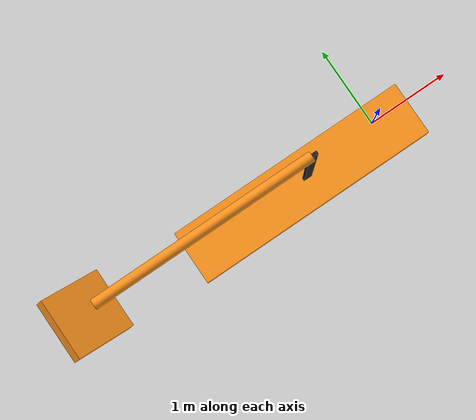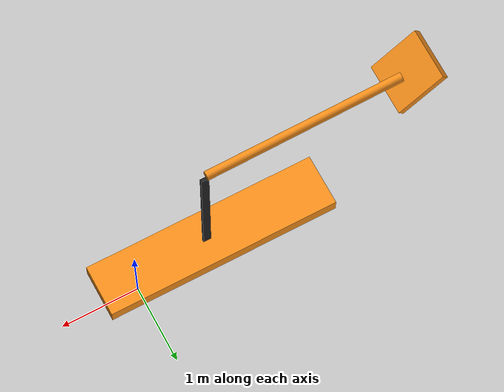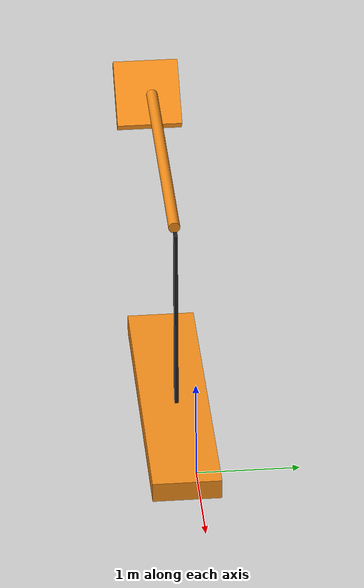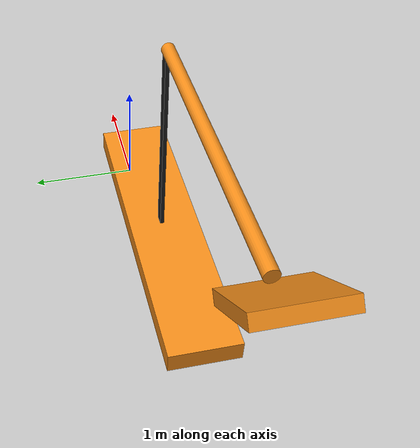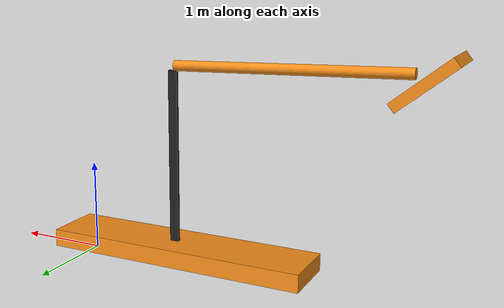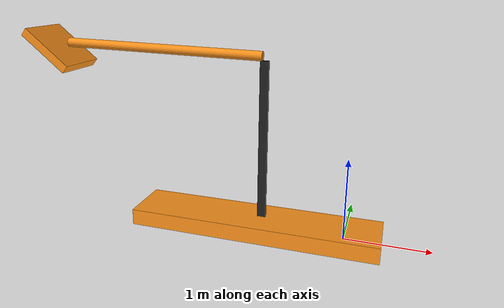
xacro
<?xml version="1.0" ?>

<robot name="myboat"  xmlns:xacro="http://www.ros.org/wiki/xacro">

  <!-- Constants for robot dimensions -->
  <xacro:property name="PI" value="3.1415926535897931"/>

  <!-- Import all Gazebo-customization elements, including Gazebo colors -->
  <xacro:include filename="$(find boot0_description)/urdf/boot0.gazebo" />
  <!-- Import Rviz colors -->
  <xacro:include filename="$(find boot0_description)/urdf/materials.xacro" />

  <joint name="body_arm" type="revolute">
    <parent link="myboat__body"/>
    <child link="myboat__arm"/>
    <origin rpy="-1.45000e-03 -1.54681e+00  3.75000e-03" xyz="0.02714 -0.00665  1.9954"/>
    <axis xyz="0 1 0"/>
    <limit effort="200.0" lower="-1.4" upper="1.4" velocity="1.0"/>
  </joint>
  <joint name="arm_blad" type="revolute">
    <parent link="myboat__arm"/>
    <child link="myboat__blad"/>
    <origin rpy="-3.13788  0.91639 -3.13874" xyz="-0.03048 -0.03639  2.64237"/>
    <axis xyz="0 1 0"/>
    <limit effort="200.0" lower="-1.4" upper="1.4" velocity="1.0"/>
  </joint>
  <joint name="base_body" type="revolute">
    <parent link="base_link"/>
    <child link="myboat__body"/>
    <origin rpy="0.e+00  0.e+00 -4.e-05" xyz="-0.98209 -0.1049   0.15209"/>
    <axis xyz="0 1 0"/>
    <limit effort="2000.0" lower="-1.4" upper="1.4" velocity="1.0"/>
  </joint>

  <link name="base_link"/>
  <!-- Dummy for gazebo   -->
  <joint name="dummy" type="fixed">
    <parent link="base_link"/>
    <child link="myboat__base"/>
  </joint>

  <link name="myboat__base">
    <inertial>
      <mass value="15"/>
      <origin rpy="0 0 0" xyz="-1.0 -0.12 0.1"/>
      <inertia ixx="0.6" ixy="0" ixz="0" iyy="11" iyz="0" izz="11.8"/>
    </inertial>
    <collision>
      <origin rpy="0 0 0" xyz="-1.0 -0.12   0.1"/>
      <geometry>
        <box size="3.0 0.663318 0.197068"/>
      </geometry>
    </collision>
    <visual>
      <origin rpy="0 0 0" xyz="-1.06112 -0.1246   0.1"/>
      <geometry>
        <box size="3.0 0.663318 0.197068"/>
      </geometry>
    </visual>
  </link>
  <link name="myboat__body">
    <inertial>
      <mass value="60.0"/>
      <origin rpy="0 0 0" xyz="0 0 0.97"/>
      <inertia ixx="19" ixy="0" ixz="0" iyy="19" iyz="0" izz="0.056"/>
    </inertial>
    <collision>
      <origin rpy="0 0 0" xyz="0   0   0.97"/>
      <geometry>
        <box size="0.100516 0.036549 1.95488"/>
      </geometry>
    </collision>
    <visual>
      <origin rpy="0 0 0" xyz="0   0   0.97"/>
      <geometry>
        <box size="0.100516 0.036549 1.95488"/>
      </geometry>
    </visual>
  </link>
  <link name="myboat__blad">
    <inertial>
      <mass value="1.0"/>
      <origin rpy="0 0 0" xyz="0 0 -0.05"/>
      <inertia ixx="0.34" ixy="0" ixz="0" iyy="0.34" iyz="0" izz="0.73"/>
    </inertial>
    <collision>
      <origin rpy="0 0 0" xyz="0    0   -0.05"/>
      <geometry>
        <box size="0.695693 0.648073 0.108244"/>
      </geometry>
    </collision>
    <visual>
      <origin rpy="0 0 0" xyz="0    0   -0.05"/>
      <geometry>
        <box size="0.695693 0.648073 0.108244"/>
      </geometry>
    </visual>
  </link>
  <link name="myboat__arm">
    <inertial>
      <mass value="1.0"/>
      <origin rpy="0 0 0" xyz="0 0 1.3"/>
      <inertia ixx="0.32" ixy="0" ixz="0" iyy="0.32" iyz="0" izz="0.0016"/>
    </inertial>
    <collision>
      <origin rpy="0 0 0" xyz="0  0  1.3"/>
      <geometry>
        <cylinder length="1.97792" radius="0.05655"/>
      </geometry>
    </collision>
    <visual>
      <origin rpy="0 0 0" xyz="0  0  1.3"/>
      <geometry>
        <cylinder length="2.5" radius="0.05655"/>
      </geometry>
    </visual>
  </link>

  <transmission name="tran1">
    <type>transmission_interface/SimpleTransmission</type>
    <joint name="base_body">
      <hardwareInterface>hardware_interface/EffortJointInterface</hardwareInterface>
    </joint>
    <actuator name="motor1">
      <mechanicalReduction>1</mechanicalReduction>
    </actuator>
  </transmission>

  <transmission name="tran2">
    <type>transmission_interface/SimpleTransmission</type>
    <joint name="body_arm">
      <hardwareInterface>hardware_interface/EffortJointInterface</hardwareInterface>
    </joint>
    <actuator name="motor2">
      <mechanicalReduction>1</mechanicalReduction>
    </actuator>
  </transmission>

  <transmission name="tran3">
    <type>transmission_interface/SimpleTransmission</type>
    <joint name="arm_blad">
      <hardwareInterface>hardware_interface/EffortJointInterface</hardwareInterface>
    </joint>
    <actuator name="motor2">
      <mechanicalReduction>1</mechanicalReduction>
    </actuator>
  </transmission>

</robot>
